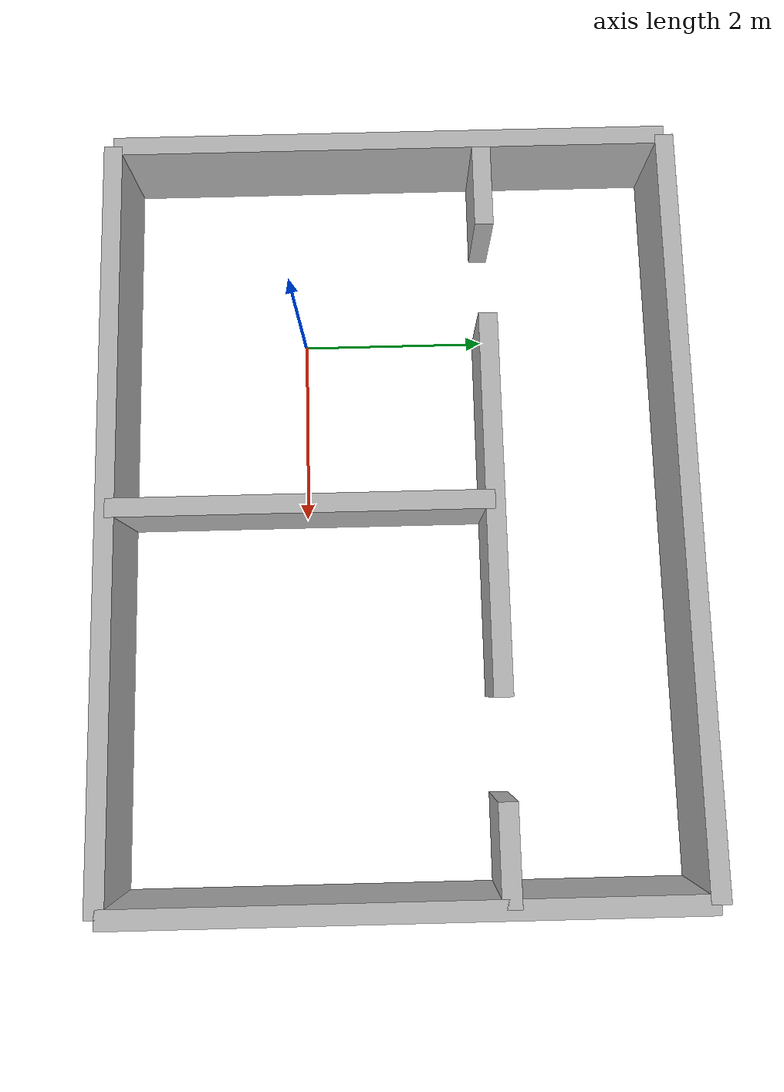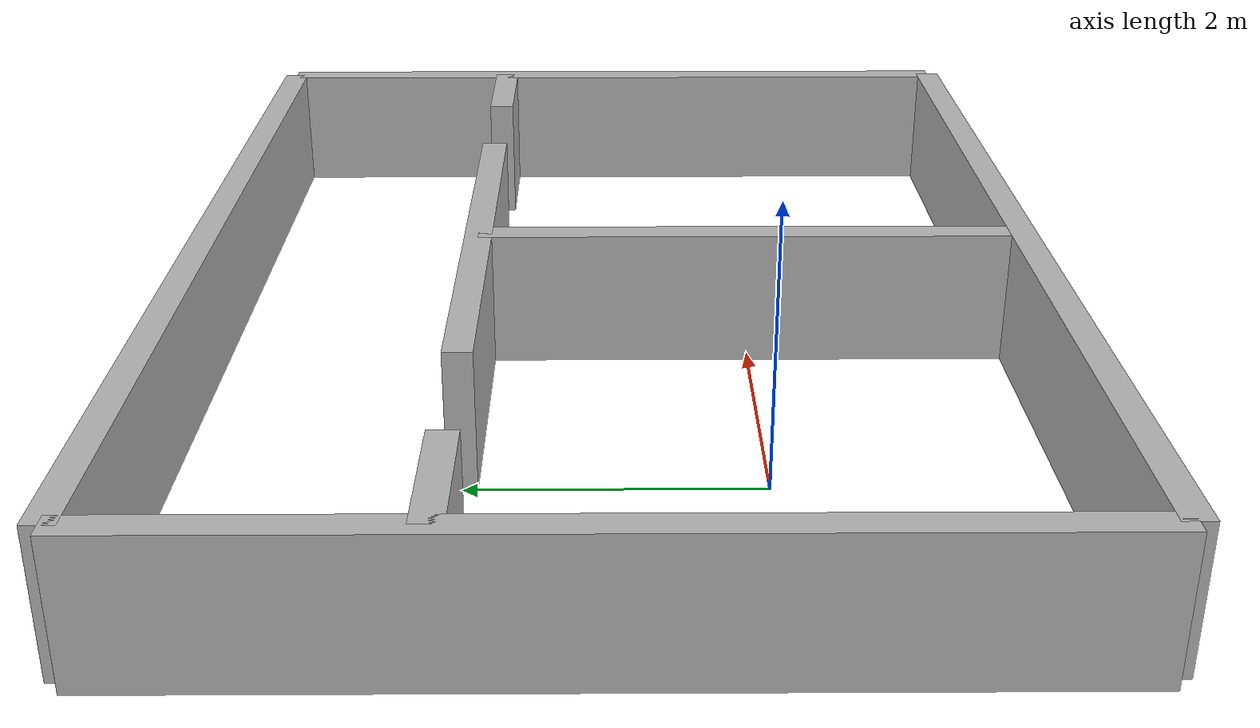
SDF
<?xml version="1.0" ?>

<sdf version="1.4">
<world name="double_room">
    <model name="wall_1">
        <static>1</static>
        <pose>2.0 0 0.5 0 0 0</pose>
        <link name="wall_1">
            <pose>0 0 0 0 0 0</pose>
            <inertial>
                <mass>5</mass>
                <inertia>
                    <ixx>0.0</ixx>
                    <ixy>0.0</ixy>
                    <ixz>0.0</ixz>
                    <iyy>0.0</iyy>
                    <iyz>0.0</iyz>
                    <izz>0.0</izz>
                </inertia>
            </inertial>
            <collision name="wall_1_collision">
                <geometry>
                    <box>
                        <size>0.2 4.0 1.0</size>
                    </box>
                </geometry>
            </collision>
            <visual name="wall_1_visual">
               <geometry>
                   <box>
                       <size>0.2 4.0 1.0</size>
                   </box>
               </geometry>
            </visual>
        </link>
    </model>

    <model name="wall_2">
        <static>1</static>
        <pose>2.0 2.0 0.5 0 0 0</pose>
        <link name="wall_2">
            <pose>0 0 0 0 0 0</pose>
            <inertial>
                <mass>5</mass>
                <inertia>
                    <ixx>0.0</ixx>
                    <ixy>0.0</ixy>
                    <ixz>0.0</ixz>
                    <iyy>0.0</iyy>
                    <iyz>0.0</iyz>
                    <izz>0.0</izz>
                </inertia>
            </inertial>
            <collision name="wall_2_collision">
                <geometry>
                    <box>
                        <size>4.0 0.2 1.0</size>
                    </box>
                </geometry>
            </collision>
            <visual name="wall_2_visual">
               <geometry>
                   <box>
                       <size>4.0 0.2 1.0</size>
                   </box>
               </geometry>
            </visual>
        </link>
    </model>

    <model name="wall_3">
        <static>1</static>
        <pose>-1.5 2.0 0.5 0 0 0</pose>
        <link name="wall_3">
            <pose>0 0 0 0 0 0</pose>
            <inertial>
                <mass>5</mass>
                <inertia>
                    <ixx>0.0</ixx>
                    <ixy>0.0</ixy>
                    <ixz>0.0</ixz>
                    <iyy>0.0</iyy>
                    <iyz>0.0</iyz>
                    <izz>0.0</izz>
                </inertia>
            </inertial>
            <collision name="wall_3_collision">
                <geometry>
                    <box>
                        <size>1.0 0.2 1.0</size>
                    </box>
                </geometry>
            </collision>
            <visual name="wall_3_visual">
               <geometry>
                   <box>
                       <size>1.0 0.2 1.0</size>
                   </box>
               </geometry>
            </visual>
        </link>
    </model>

    <model name="wall_4">
        <static>1</static>
        <pose>5.5 2.0 0.5 0 0 0</pose>
        <link name="wall_4">
            <pose>0 0 0 0 0 0</pose>
            <inertial>
                <mass>5</mass>
                <inertia>
                    <ixx>0.0</ixx>
                    <ixy>0.0</ixy>
                    <ixz>0.0</ixz>
                    <iyy>0.0</iyy>
                    <iyz>0.0</iyz>
                    <izz>0.0</izz>
                </inertia>
            </inertial>
            <collision name="wall_4_collision">
                <geometry>
                    <box>
                        <size>1.0 0.2 1.0</size>
                    </box>
                </geometry>
            </collision>
            <visual name="wall_4_visual">
               <geometry>
                   <box>
                       <size>1.0 0.2 1.0</size>
                   </box>
               </geometry>
            </visual>
        </link>
    </model>

    <model name="wall_5">
        <static>1</static>
        <pose>2.0 -2.0 0.5 0 0 0</pose>
        <link name="wall_5">
            <pose>0 0 0 0 0 0</pose>
            <inertial>
                <mass>5</mass>
                <inertia>
                    <ixx>0.0</ixx>
                    <ixy>0.0</ixy>
                    <ixz>0.0</ixz>
                    <iyy>0.0</iyy>
                    <iyz>0.0</iyz>
                    <izz>0.0</izz>
                </inertia>
            </inertial>
            <collision name="wall_5_collision">
                <geometry>
                    <box>
                        <size>8.0 0.2 1.0</size>
                    </box>
                </geometry>
            </collision>
            <visual name="wall_5_visual">
               <geometry>
                   <box>
                       <size>8.0 0.2 1.0</size>
                   </box>
               </geometry>
            </visual>
        </link>
    </model>

    <model name="wall_6">
        <static>1</static>
        <pose>-2.0 1.0 0.5 0 0 0</pose>
        <link name="wall_6">
            <pose>0 0 0 0 0 0</pose>
            <inertial>
                <mass>5</mass>
                <inertia>
                    <ixx>0.0</ixx>
                    <ixy>0.0</ixy>
                    <ixz>0.0</ixz>
                    <iyy>0.0</iyy>
                    <iyz>0.0</iyz>
                    <izz>0.0</izz>
                </inertia>
            </inertial>
            <collision name="wall_6_collision">
                <geometry>
                    <box>
                        <size>0.2 6.0 1.0</size>
                    </box>
                </geometry>
            </collision>
            <visual name="wall_6_visual">
               <geometry>
                   <box>
                       <size>0.2 6.0 1.0</size>
                   </box>
               </geometry>
            </visual>
        </link>
    </model>

    <model name="wall_7">
        <static>1</static>
        <pose>2.0 4.0 0.5 0 0 0</pose>
        <link name="wall_7">
            <pose>0 0 0 0 0 0</pose>
            <inertial>
                <mass>5</mass>
                <inertia>
                    <ixx>0.0</ixx>
                    <ixy>0.0</ixy>
                    <ixz>0.0</ixz>
                    <iyy>0.0</iyy>
                    <iyz>0.0</iyz>
                    <izz>0.0</izz>
                </inertia>
            </inertial>
            <collision name="wall_7_collision">
                <geometry>
                    <box>
                        <size>8.0 0.2 1.0</size>
                    </box>
                </geometry>
            </collision>
            <visual name="wall_7_visual">
               <geometry>
                   <box>
                       <size>8.0 0.2 1.0</size>
                   </box>
               </geometry>
            </visual>
        </link>
    </model>

    <model name="wall_8">
        <static>1</static>
        <pose>6.0 1.0 0.5 0 0 0</pose>
        <link name="wall_8">
            <pose>0 0 0 0 0 0</pose>
            <inertial>
                <mass>5</mass>
                <inertia>
                    <ixx>0.0</ixx>
                    <ixy>0.0</ixy>
                    <ixz>0.0</ixz>
                    <iyy>0.0</iyy>
                    <iyz>0.0</iyz>
                    <izz>0.0</izz>
                </inertia>
            </inertial>
            <collision name="wall_8_collision">
                <geometry>
                    <box>
                        <size>0.2 6.0 1.0</size>
                    </box>
                </geometry>
            </collision>
            <visual name="wall_8_visual">
               <geometry>
                   <box>
                       <size>0.2 6.0 1.0</size>
                   </box>
               </geometry>
            </visual>
        </link>
    </model>

</world>
</sdf>
